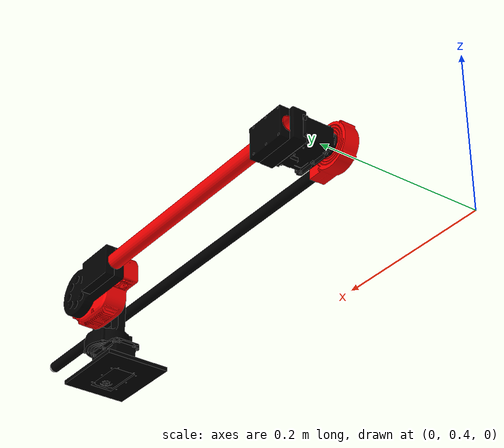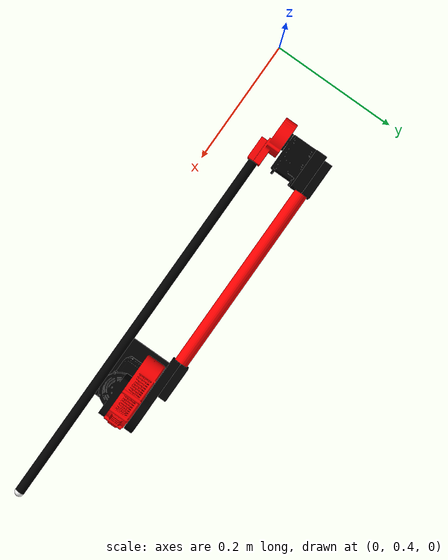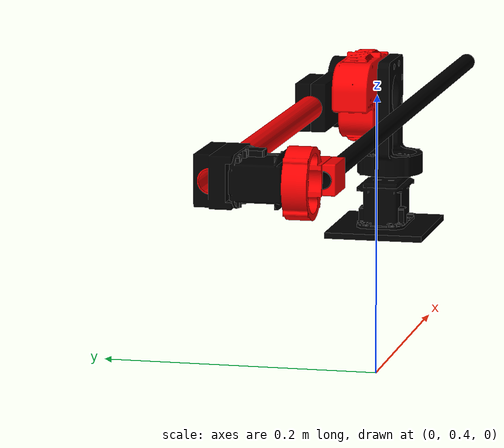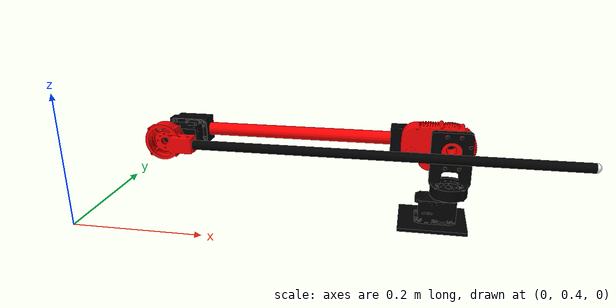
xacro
<?xml version="1.0"?>
<robot name="arm" xmlns:xacro="http://ros.org/wiki/xacro">

  <!-- Material and Colors-->
  <material name="black">
    <color rgba="${0/255} ${0/255} ${0/255} 1"/>
  </material>
  <material name="dark_grey">
    <color rgba="${105/255} ${105/255} ${105/255} 1"/>
  </material>
  <material name="grey">
    <color rgba="${128/255} ${128/255} ${128/255} 1"/>
  </material>
  <material name="light_grey">
    <color rgba="${221/255} ${221/255} ${221/255} 1"/>
  </material>
  <material name="white">
    <color rgba="${255/255} ${255/255} ${255/255} 1"/>
  </material>
  <material name="red">
    <color rgba="${255/255} ${0/255} ${0/255} 1"/>
  </material>

    <!-- General Variables-->
    <xacro:property name="pi" value="3.1415269" />

    <!-- Mesh files of exact geometry-->
    <xacro:property name="mesh_file_baseplate" value="package://mav_arm_force_controlled/meshes/geometry/baseplate.stl" />
    <xacro:property name="mesh_file_dyamixel" value="package://mav_arm_force_controlled/meshes/geometry/dynamixel.stl" />
    <xacro:property name="mesh_file_connecting" value="package://mav_arm_force_controlled/meshes/geometry/connecting.stl" />
    <xacro:property name="mesh_file_hebi" value="package://mav_arm_force_controlled/meshes/geometry/hebi.stl" />
    <xacro:property name="mesh_file_hebitotube2" value="package://mav_arm_force_controlled/meshes/geometry/hebitotube2.stl" />
    <xacro:property name="mesh_file_tube2" value="package://mav_arm_force_controlled/meshes/geometry/tube2.stl" />
    <xacro:property name="mesh_file_clamp2" value="package://mav_arm_force_controlled/meshes/geometry/tube2todynamixel.stl" />
    <xacro:property name="mesh_file_actuator1" value="package://mav_arm_force_controlled/meshes/geometry/dynamixel.stl" />
    <xacro:property name="mesh_file_clamp1" value="package://mav_arm_force_controlled/meshes/geometry/dynamixeltotube1.stl" />
    <xacro:property name="mesh_file_tube1" value="package://mav_arm_force_controlled/meshes/geometry/tube1.stl" />
    <xacro:property name="mesh_file_tip" value="package://mav_arm_force_controlled/meshes/geometry/tip.stl" />

    <!-- Mesh files of simplified geometry for collision checking-->
    <xacro:property name="s_mesh_file_baseplate" value="package://mav_arm_force_controlled/meshes/simplified_geometry/baseplate.stl" />
    <xacro:property name="s_mesh_file_dyamixel" value="package://mav_arm_force_controlled/meshes/simplified_geometry/dynamixel.stl" />
    <xacro:property name="s_mesh_file_connecting" value="package://mav_arm_force_controlled/meshes/simplified_geometry/connecting.stl" />
    <xacro:property name="s_mesh_file_hebi" value="package://mav_arm_force_controlled/meshes/simplified_geometry/hebi.stl" />
    <xacro:property name="s_mesh_file_hebitotube2" value="package://mav_arm_force_controlled/meshes/simplified_geometry/hebitotube2.stl" />
    <xacro:property name="s_mesh_file_tube2" value="package://mav_arm_force_controlled/meshes/simplified_geometry/tube2.stl" />
    <xacro:property name="s_mesh_file_clamp2" value="package://mav_arm_force_controlled/meshes/simplified_geometry/tube2todynamixel.stl" />
    <xacro:property name="s_mesh_file_actuator1" value="package://mav_arm_force_controlled/meshes/simplified_geometry/dynamixel.stl" />
    <xacro:property name="s_mesh_file_clamp1" value="package://mav_arm_force_controlled/meshes/simplified_geometry/dynamixeltotube1.stl" />
    <xacro:property name="s_mesh_file_tube1" value="package://mav_arm_force_controlled/meshes/simplified_geometry/tube1.stl" />
    <xacro:property name="s_mesh_file_tip" value="package://mav_arm_force_controlled/meshes/simplified_geometry/tip.stl" />

    <!-- Mesh files are in mm. All mesh files are scaled by the factor 1000-->
    <xacro:property name="mesh_scale" value="0.001" />

    <!-- The Mass and inertia elements are defined before the link element-->

    <xacro:property name="baseplate_mass" value="0.040063354" />

    <xacro:property name="baseplate_cog_x" value="0.025202079" />
    <xacro:property name="baseplate_cog_y" value="0" />
    <xacro:property name="baseplate_cog_z" value="0.0025" />

    <xacro:property name="baseplate_ixx" value="0.000063973" />
    <xacro:property name="baseplate_ixy" value="0" />
    <xacro:property name="baseplate_ixz" value="0.000005877" />
    <xacro:property name="baseplate_iyy" value="0.000151767" />
    <xacro:property name="baseplate_iyz" value="0" />
    <xacro:property name="baseplate_izz" value="0.000214186" />

  <link name="world"/>

  <joint name="fixed" type="fixed">
    <parent link="world"/>
    <child link="baseplate"/>
    <origin xyz="0.5 0.5 0" rpy="0 0 0" />
  </joint>

  <link name="baseplate">
    <visual>
      <geometry>
          <mesh filename="${mesh_file_baseplate}"
                scale="${mesh_scale} ${mesh_scale} ${mesh_scale}"/>
        </geometry>
      <origin rpy="0 0 0" xyz="0 0 0"/>
       <material name="black"/>
    </visual>
    <collision>
      <geometry>
        <mesh filename="${s_mesh_file_baseplate}"
              scale="${mesh_scale} ${mesh_scale} ${mesh_scale}"/>
        </geometry>
      <origin rpy="0 0 0" xyz="0 0 0"/>
    </collision>
    <inertial>
      <mass value="${baseplate_mass}"/>
      <inertia ixx="${baseplate_ixx}" ixy="${baseplate_ixy}" ixz="${baseplate_ixz}" iyy="${baseplate_iyy}" iyz="${baseplate_iyz}" izz="${baseplate_izz}" />
    </inertial>
  </link>

  <joint name="baseplate_to_actuator3" type="fixed">
    <parent link="baseplate"/>
    <child link="actuator3"/>
    <origin rpy="0 0 ${-pi/2}" xyz="${0.0425+0.0055} 0 ${.005+0.017}"/>
  </joint>

  <xacro:property name="dynamixel_mass" value="0.126" />

  <xacro:property name="dynamixel_cog_x" value="0.000000008" />
  <xacro:property name="dynamixel_cog_y" value="-0.01519089" />
  <xacro:property name="dynamixel_cog_z" value="0.000362847" />

  <xacro:property name="dynamixel_ixx" value="0.000129338" />
  <xacro:property name="dynamixel_ixy" value="0" />
  <xacro:property name="dynamixel_ixz" value="0" />
  <xacro:property name="dynamixel_iyy" value="0.000047045" />
  <xacro:property name="dynamixel_iyz" value="0.0000014" />
  <xacro:property name="dynamixel_izz" value="0.000115625" />

  <link name="actuator3">
    <visual>
      <geometry>
          <mesh filename="${mesh_file_dyamixel}"
                scale="${mesh_scale} ${mesh_scale} ${mesh_scale}"/>
        </geometry>
        <origin rpy="0 0 0" xyz="0 0 0"/>
        <material name="black"/>
    </visual>
    <collision>
      <geometry>
        <mesh filename="${s_mesh_file_dyamixel}"
              scale="${mesh_scale} ${mesh_scale} ${mesh_scale}"/>
        </geometry>
      <origin rpy="0 0 0" xyz="0 0 0"/>
    </collision>
    <inertial>
      <mass value="${dynamixel_mass}"/>
      <inertia ixx="${dynamixel_ixy}" ixy="${dynamixel_ixy}" ixz="${dynamixel_ixz}" iyy="${dynamixel_iyy}" iyz="${dynamixel_iyz}" izz="${dynamixel_izz}" />
    </inertial>
  </link>

  <joint name="actuator_to_connectingbox" type="revolute">
    <axis rpy="0 0 0" xyz="0 0 1"/>
    <parent link="actuator3"/>
    <child link="connectingbox"/>
    <origin rpy="0 0 ${pi}" xyz="0 0 ${0.0235+0.0035}"/>
    <limit effort="30" velocity="1.0"/>
  </joint>

  <transmission name="actuator3_dynamixel_trans">
    <type>transmission_interface/SimpleTransmission</type>
    <actuator name="actuator3_dynamixel_motor">
      <mechanicalReduction>1</mechanicalReduction>
    </actuator>
    <joint name="actuator_to_connectingbox">
      <hardwareInterface>hardware_interface/EffortJointInterface</hardwareInterface>
    </joint>
  </transmission>

  <xacro:property name="connectionmx64hebi_mass" value=" 0.402140403" />

  <xacro:property name="connectionmx64hebi_cog_x" value="0.000000171" />
  <xacro:property name="connectionmx64hebi_cog_y" value="0.000278026" />
  <xacro:property name="connectionmx64hebi_cog_z" value="0.038471524" />

  <xacro:property name="connectionmx64hebi_ixx" value="0.001105121" />
  <xacro:property name="connectionmx64hebi_ixy" value="0.000000016" />
  <xacro:property name="connectionmx64hebi_ixz" value="0" />
  <xacro:property name="connectionmx64hebi_iyy" value="0.001002814" />
  <xacro:property name="connectionmx64hebi_iyz" value="0.000007088" />
  <xacro:property name="connectionmx64hebi_izz" value="0.000170487" />

  <link name="connectingbox">
    <visual>
      <geometry>
        <mesh filename="${mesh_file_connecting}"
              scale="${mesh_scale} ${mesh_scale} ${mesh_scale}"/>
      </geometry>
      <origin rpy="0 0 0" xyz="0 0 0"/>
      <material name="black"/>
    </visual>
    <collision>
      <geometry>
        <mesh filename="${s_mesh_file_connecting}"
              scale="${mesh_scale} ${mesh_scale} ${mesh_scale}"/>
        </geometry>
      <origin rpy="0 0 0" xyz="0 0 0"/>
    </collision>
    <inertial>
      <mass value="${connectionmx64hebi_mass}"/>
      <inertia ixx="${connectionmx64hebi_ixx}" ixy="${connectionmx64hebi_ixy}" ixz="${connectionmx64hebi_ixz}" iyy="${connectionmx64hebi_iyy}" iyz="${connectionmx64hebi_iyz}" izz="${connectionmx64hebi_izz}" />
    </inertial>
  </link>

  <joint name="connectingbox_to_actuator2" type="fixed">
    <parent link="connectingbox"/>
    <child link="actuator2"/>
    <origin rpy="${pi/2} ${0} ${pi/2}"  xyz="${0.005+0.015} ${0} ${0.0635}"/>
  </joint>

  <xacro:property name="actuator2_mass" value="0.34" />

  <xacro:property name="actuator2_cog_x" value="0.000000171" />
  <xacro:property name="actuator2_cog_y" value="0.000278026" />
  <xacro:property name="actuator2_cog_z" value="0.038471524" />

  <xacro:property name="actuator2_ixx" value="0.000186786" />
  <xacro:property name="actuator2_ixy" value="0.000041556" />
  <xacro:property name="actuator2_ixz" value="0.000000273" />
  <xacro:property name="actuator2_iyy" value="0.00043422" />
  <xacro:property name="actuator2_iyz" value="0.00000029" />
  <xacro:property name="actuator2_izz" value="0.000554524" />

  <link name="actuator2">
    <visual>
      <geometry>
        <mesh filename="${mesh_file_hebi}"
              scale="${mesh_scale} ${mesh_scale} ${mesh_scale}"/>
      </geometry>
      <origin rpy="0 0 0" xyz="0 0 0"/>
      <material name="red"/>
    </visual>
    <collision>
      <geometry>
        <mesh filename="${s_mesh_file_hebi}"
              scale="${mesh_scale} ${mesh_scale} ${mesh_scale}"/>
        </geometry>
      <origin rpy="0 0 0" xyz="0 0 0"/>
    </collision>
    <inertial>
      <mass value="${actuator2_mass}"/>
      <inertia ixx="${actuator2_ixx}" ixy="${actuator2_ixy}" ixz="${actuator2_ixz}" iyy="${actuator2_iyy}" iyz="${actuator2_iyz}" izz="${actuator2_izz}" />
    </inertial>
  </link>

  <joint name="actuator2_to_clamp3" type="revolute">
    <axis rpy="0 0 0" xyz="0 1 0"/>
    <parent link="actuator2"/>
    <child link="clamp3"/>
    <origin rpy="${pi/2} 0 ${-pi/2}" xyz="${0} 0 ${0.01605}"/>
    <limit effort="30" velocity="1.0"/>
  </joint>

  <transmission name="actuator2_hebi_trans">
    <type>transmission_interface/SimpleTransmission</type>
    <actuator name="$actuator2_hebi_motor">
      <mechanicalReduction>1</mechanicalReduction>
    </actuator>
    <joint name="actuator2_to_clamp3">
      <hardwareInterface>hardware_interface/EffortJointInterface</hardwareInterface>
    </joint>
  </transmission>

  <xacro:property name="clamp3_mass" value="0.21" />

  <xacro:property name="clamp3_cog_x" value="0.015022968" />
  <xacro:property name="clamp3_cog_y" value="0.001776283" />
  <xacro:property name="clamp3_cog_z" value="0.000017898" />

  <xacro:property name="clamp3_ixx" value="0.000524947" />
  <xacro:property name="clamp3_ixy" value="0.000000017" />
  <xacro:property name="clamp3_ixz" value="-0.00000004" />
  <xacro:property name="clamp3_iyy" value="0.000535726" />
  <xacro:property name="clamp3_iyz" value="-0.000092479" />
  <xacro:property name="clamp3_izz" value="0.000074342" />

  <link name="clamp3">
    <visual>
      <geometry>
        <mesh filename="${mesh_file_hebitotube2}"
              scale="${mesh_scale} ${mesh_scale} ${mesh_scale}"/>
      </geometry>
      <origin rpy="0 0 0" xyz="0 0 0"/>
      <material name="black"/>
    </visual>
    <collision>
      <geometry>
        <mesh filename="${s_mesh_file_hebitotube2}"
              scale="${mesh_scale} ${mesh_scale} ${mesh_scale}"/>
        </geometry>
      <origin rpy="0 0 0" xyz="0 0 0"/>
    </collision>
    <inertial>
      <mass value="${clamp3_mass}"/>
      <inertia ixx="${clamp3_ixx}" ixy="${clamp3_ixy}" ixz="${clamp3_ixz}" iyy="${clamp3_iyy}" iyz="${clamp3_iyz}" izz="${clamp3_izz}" />
    </inertial>
  </link>

  <joint name="clamp3_to_tube2" type="fixed">
    <parent link="clamp3"/>
    <child link="tube2"/>
    <origin rpy="0 ${pi} 0" xyz="${0} ${0.013} ${-0.035}"/>
  </joint>

  <xacro:property name="tube2_mass" value="0.038201767" />

  <xacro:property name="tube2_cog_x" value="0" />
  <xacro:property name="tube2_cog_y" value="0" />
  <xacro:property name="tube2_cog_z" value="0.2" />

  <xacro:property name="tube2_ixx" value="0.002039156" />
  <xacro:property name="tube2_ixy" value="0" />
  <xacro:property name="tube2_ixz" value="0" />
  <xacro:property name="tube2_iyy" value="0.002039156" />
  <xacro:property name="tube2_iyz" value="0" />
  <xacro:property name="tube2_izz" value="0.000003457" />

  <link name="tube2">
    <visual>
      <geometry>
        <mesh filename="${mesh_file_tube2}"
              scale="${mesh_scale} ${mesh_scale} ${mesh_scale}"/>
      </geometry>
      <origin rpy="0 0 0" xyz="0 0 0"/>
      <material name="red"/>
    </visual>
    <collision>
      <geometry>
        <mesh filename="${s_mesh_file_tube2}"
              scale="${mesh_scale} ${mesh_scale} ${mesh_scale}"/>
        </geometry>
      <origin rpy="0 0 0" xyz="0 0 0"/>
    </collision>
    <inertial>
      <mass value="${tube2_mass}"/>
      <inertia ixx="${tube2_ixx}" ixy="${tube2_ixy}" ixz="${tube2_ixz}" iyy="${tube2_iyy}" iyz="${tube2_iyz}" izz="${tube2_izz}" />
    </inertial>
  </link>

    <joint name="tube2_to_clamp2" type="fixed">
      <parent link="tube2"/>
      <child link="clamp2"/>
      <origin rpy="${pi/2} 0 ${-pi}" xyz="${0} ${-0.018} ${0.4-0.055}"/>
    </joint>

    <xacro:property name="clamp2_mass" value="0.128888247" />

    <xacro:property name="clamp2_cog_x" value="0.000000004" />
    <xacro:property name="clamp2_cog_y" value="0.02936423" />
    <xacro:property name="clamp2_cog_z" value="0.016233149" />

    <xacro:property name="clamp2_ixx" value="0.00019462" />
    <xacro:property name="clamp2_ixy" value="0" />
    <xacro:property name="clamp2_ixz" value="0" />
    <xacro:property name="clamp2_iyy" value="0.000067787" />
    <xacro:property name="clamp2_iyz" value="0.000060459" />
    <xacro:property name="clamp2_izz" value="0.000173715" />

    <link name="clamp2">
      <visual>
        <geometry>
          <mesh filename="${mesh_file_clamp2}"
                scale="${mesh_scale} ${mesh_scale} ${mesh_scale}"/>
        </geometry>
        <origin rpy="0 0 0" xyz="0 0 0"/>
        <material name="black"/>
      </visual>
      <collision>
        <geometry>
          <mesh filename="${s_mesh_file_clamp2}"
                scale="${mesh_scale} ${mesh_scale} ${mesh_scale}"/>
          </geometry>
        <origin rpy="0 0 0" xyz="0 0 0"/>
      </collision>
      <inertial>
        <mass value="${clamp2_mass}"/>
        <inertia ixx="${clamp2_ixx}" ixy="${clamp2_ixy}" ixz="${clamp2_ixz}" iyy="${clamp2_iyy}" iyz="${clamp2_iyz}" izz="${clamp2_izz}" />
      </inertial>
    </link>

      <joint name="clamp2_to_actuator1" type="fixed">
        <parent link="clamp2"/>
        <child link="actuator1"/>
        <origin rpy="0 ${pi} 0" xyz="${0} ${0.0056+0.0425} ${-0.017}"/>
      </joint>

      <xacro:property name="actuator1_mass" value="0.126" />

      <xacro:property name="actuator1_cog_x" value="0.000000008" />
      <xacro:property name="actuator1_cog_y" value="-0.01519089" />
      <xacro:property name="actuator1_cog_z" value="0.000362847" />

      <xacro:property name="actuator1_ixx" value="0.000129338" />
      <xacro:property name="actuator1_ixy" value="0" />
      <xacro:property name="actuator1_ixz" value="0" />
      <xacro:property name="actuator1_iyy" value="0.000047045" />
      <xacro:property name="actuator1_iyz" value="0.0000014" />
      <xacro:property name="actuator1_izz" value="0.000115625" />

    <link name="actuator1">
      <visual>
        <geometry>
            <mesh filename="${mesh_file_actuator1}"
              scale="${mesh_scale} ${mesh_scale} ${mesh_scale}"/>
          </geometry>
        <origin rpy="0 0 0" xyz="0 0 0"/>
        <material name="black"/>
      </visual>
      <collision>
        <geometry>
          <mesh filename="${s_mesh_file_actuator1}"
            scale="${mesh_scale} ${mesh_scale} ${mesh_scale}"/>
          </geometry>
        <origin rpy="0 0 0" xyz="0 0 0"/>
      </collision>
      <inertial>
        <mass value="${actuator1_mass}"/>
        <inertia ixx="${actuator1_ixx}" ixy="${actuator1_ixy}" ixz="${actuator1_ixz}" iyy="${actuator1_iyy}" iyz="${actuator1_iyz}" izz="${actuator1_izz}" />
      </inertial>
    </link>

  <joint name="actuator1_to_clamp1" type="revolute">
    <axis rpy="0 0 0" xyz="0 0 1"/>
    <parent link="actuator1"/>
    <child link="clamp1"/>
    <origin rpy="${0} ${0} ${-pi/2}" xyz="${0} ${0} ${0.0235}"/>
    <limit effort="30" velocity="1.0"/>
  </joint>

  <transmission name="actuator1_dynamixel_trans">
    <type>transmission_interface/SimpleTransmission</type>
    <actuator name="$actuator1_dynamixel_motor">
      <mechanicalReduction>1</mechanicalReduction>
    </actuator>
    <joint name="actuator1_to_clamp1">
      <hardwareInterface>hardware_interface/EffortJointInterface</hardwareInterface>
    </joint>
  </transmission>

  <xacro:property name="clamp1_mass" value="0.11739877" />

  <xacro:property name="clamp1_cog_x" value="0.008717092" />
  <xacro:property name="clamp1_cog_y" value="0.000001711" />
  <xacro:property name="clamp1_cog_z" value="0.011234631" />

  <xacro:property name="clamp1_ixx" value="0.000045773" />
  <xacro:property name="clamp1_ixy" value="-0.00000003" />
  <xacro:property name="clamp1_ixz" value="0.000022588" />
  <xacro:property name="clamp1_iyy" value="0.000079456" />
  <xacro:property name="clamp1_iyz" value="0.000000001" />
  <xacro:property name="clamp1_izz" value="0.00007801" />

  <link name="clamp1">
    <visual>
      <geometry>
        <mesh filename="${mesh_file_clamp1}"
          scale="${mesh_scale} ${mesh_scale} ${mesh_scale}"/>
      </geometry>
      <origin rpy="0 0 0" xyz="0 0 0"/>
      <material name="red"/>
    </visual>
    <collision>
      <geometry>
        <mesh filename="${s_mesh_file_clamp1}"
          scale="${mesh_scale} ${mesh_scale} ${mesh_scale}"/>
        </geometry>
      <origin rpy="0 0 0" xyz="0 0 0"/>
    </collision>
    <inertial>
      <mass value="${clamp1_mass}"/>
      <inertia ixx="${clamp1_ixx}" ixy="${clamp1_ixy}" ixz="${clamp1_ixz}" iyy="${clamp1_iyy}" iyz="${clamp1_iyz}" izz="${clamp1_izz}" />
    </inertial>
  </link>

  <joint name="clamp1_to_tube1" type="fixed">
    <parent link="clamp1"/>
    <child link="tube1"/>
    <origin rpy="${0} ${pi/2} ${0}" xyz="${0.015} ${0} ${0.022}"/>
  </joint>

  <xacro:property name="tube1_mass" value="0.02035752" />

  <xacro:property name="tube1_cog_x" value="0" />
  <xacro:property name="tube1_cog_y" value="0" />
  <xacro:property name="tube1_cog_z" value="0.3" />

  <xacro:property name="tube1_ixx" value="0.002443367" />
  <xacro:property name="tube1_ixy" value="0" />
  <xacro:property name="tube1_ixz" value="0" />
  <xacro:property name="tube1_iyy" value="0.002443367" />
  <xacro:property name="tube1_iyz" value="0" />
  <xacro:property name="tube1_izz" value="0.000000929" />

    <link name="tube1">
      <visual>
        <geometry>
          <mesh filename="${mesh_file_tube1}"
            scale="${mesh_scale} ${mesh_scale} ${mesh_scale}"/>
        </geometry>
        <origin rpy="0 0 0" xyz="0 0 0"/>
        <material name="black"/>
      </visual>
      <collision>
        <geometry>
          <mesh filename="${s_mesh_file_tube1}"
            scale="${mesh_scale} ${mesh_scale} ${mesh_scale}"/>
          </geometry>
        <origin rpy="0 0 0" xyz="0 0 0"/>
      </collision>
      <inertial>
        <mass value="${tube1_mass}"/>
        <inertia ixx="${tube1_ixx}" ixy="${tube1_ixy}" ixz="${tube1_ixz}" iyy="${tube1_iyy}" iyz="${tube1_iyz}" izz="${tube1_izz}" />
      </inertial>
    </link>

    <joint name="tube1_to_tip" type="fixed">
      <parent link="tube1"/>
      <child link="tip"/>
      <origin rpy="${0} ${0} ${0}" xyz="${0} ${0} ${0.6}"/>
    </joint>

    <xacro:property name="tip_mass" value="0.039351907" />

    <xacro:property name="tip_cog_x" value="0" />
    <xacro:property name="tip_cog_y" value="0" />
    <xacro:property name="tip_cog_z" value="0.000163952" />

    <xacro:property name="tip_ixx" value="0.000000758" />
    <xacro:property name="tip_ixy" value="0" />
    <xacro:property name="tip_ixz" value="0" />
    <xacro:property name="tip_iyy" value="0.000000758" />
    <xacro:property name="tip_iyz" value="0" />
    <xacro:property name="tip_izz" value="0.0000008" />

    <link name="tip">
      <visual>
      <geometry>
          <mesh filename="${mesh_file_tip}"
            scale="${mesh_scale} ${mesh_scale} ${mesh_scale}"/>
        </geometry>
        <origin rpy="0 0 0" xyz="0 0 0"/>
        <material name="white"/>
      </visual>
      <collision>
        <geometry>
          <mesh filename="${s_mesh_file_tip}"
            scale="${mesh_scale} ${mesh_scale} ${mesh_scale}"/>
          </geometry>
        <origin rpy="0 0 0" xyz="0 0 0"/>
      </collision>
      <inertial>
        <mass value="${tip_mass}"/>
        <inertia ixx="${tip_ixx}" ixy="${tip_ixy}" ixz="${tip_ixz}" iyy="${tip_iyy}" iyz="${tip_iyz}" izz="${tip_izz}" />
      </inertial>
    </link>

    <gazebo>
      <plugin name="gazebo_ros_control" filename="libgazebo_ros_control.so">
        <robotNamespace>/arm</robotNamespace>
      </plugin>
    </gazebo>

    <gazebo reference="baseplate">
      <selfCollide>true</selfCollide>
    </gazebo>
    <gazebo reference="actuator3">
      <selfCollide>true</selfCollide>
    </gazebo>
    <gazebo reference="connectingbox">
      <selfCollide>true</selfCollide>
    </gazebo>
    <gazebo reference="actuator2">
      <selfCollide>true</selfCollide>
    </gazebo>
    <gazebo reference="clamp3">
      <selfCollide>true</selfCollide>
    </gazebo>

    <gazebo reference="tube2">
      <selfCollide>true</selfCollide>
    </gazebo>
    <gazebo reference="clamp2">
      <selfCollide>true</selfCollide>
    </gazebo>
    <gazebo reference="actuator1">
      <selfCollide>true</selfCollide>
    </gazebo>
    <gazebo reference="clamp1">
      <selfCollide>true</selfCollide>
    </gazebo>
    <gazebo reference="tube1">
      <selfCollide>true</selfCollide>
    </gazebo>
    <gazebo reference="tip">
      <selfCollide>true</selfCollide>
    </gazebo>

</robot>
